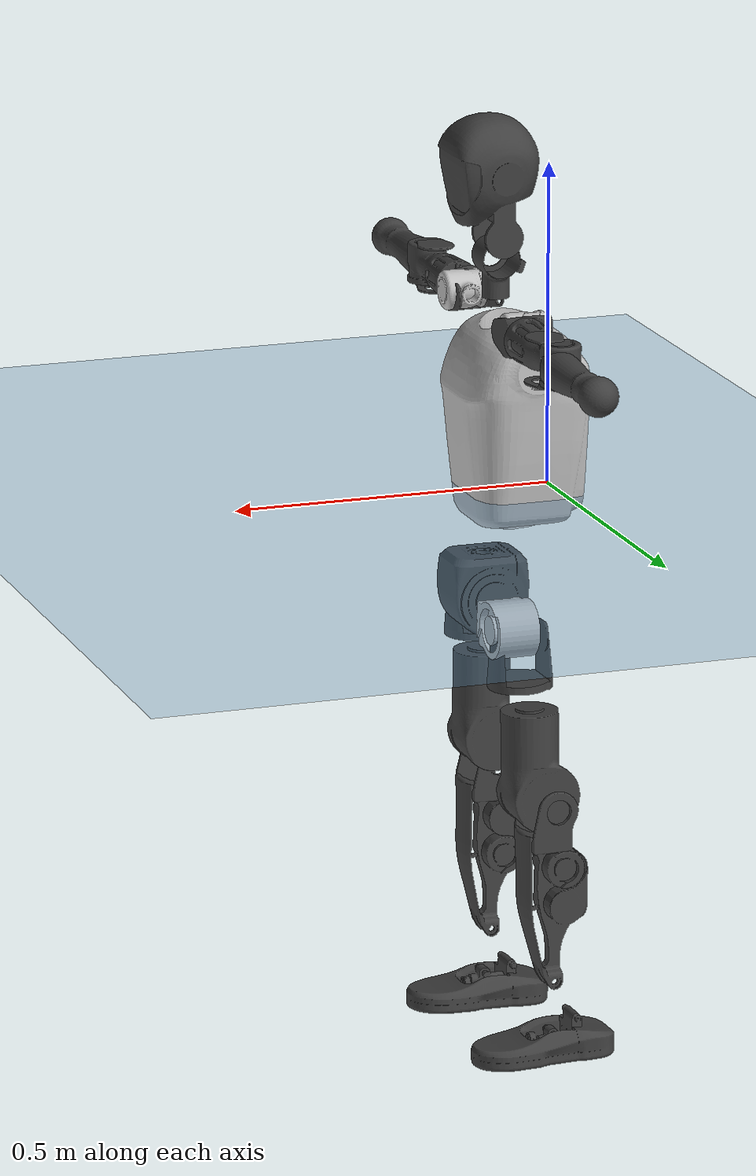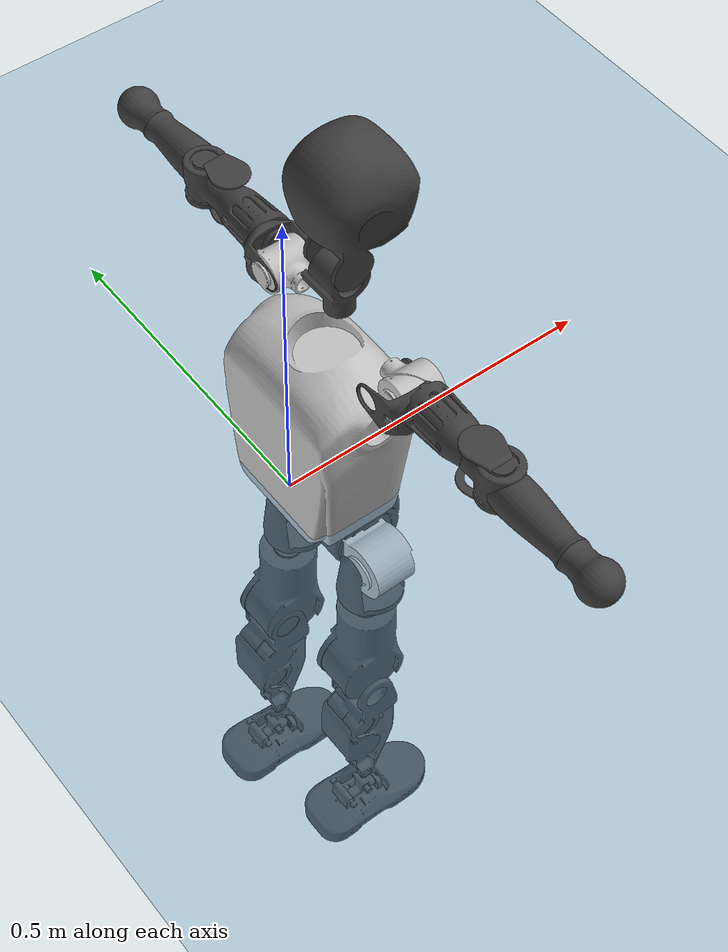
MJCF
<mujoco model="T1">
  <compiler angle="radian" assetdir="assets" balanceinertia="true" inertiafromgeom="false"/>

  <option timestep="0.005" density="1.2" viscosity="2e-05"/>

  <size nkey="1"/>

  <visual>
    <quality shadowsize="8192"/>
    <map shadowclip="0.5"/>
  </visual>

  <default>
    <default class="/">
      <joint armature="0.01" damping="0.01" frictionloss="0.1"/>
      <geom contype="0" conaffinity="0" group="1" solref="-1000 -80"/>
      <site size="0.01 0.005 0.005" group="5"/>
      <general forcelimited="true" biastype="affine" gainprm="25" biasprm="0 -25 -0.6"/>
      <default class="t1">
        <geom rgba="0.25 0.25 0.25 1"/>
        <default class="visual">
          <geom type="mesh" group="2"/>
        </default>
        <default class="collision">
          <geom group="3"/>
        </default>
        <default class="foot">
          <geom size="0.1115 0.05 0.015" type="box" condim="6" group="4" priority="1" solimp="0.015 1 0.015"/>
        </default>
        <default class="reward_collision_sphere">
          <geom group="5" rgba="1 0 0 1"/>
        </default>
      </default>
    </default>
  </default>

  <asset>
    <texture type="skybox" colorspace="auto" name="//unnamed_texture_0" builtin="gradient" rgb1="0.95 0.95 0.95" rgb2="0.95 0.95 0.95" width="100" height="600"/>
    <texture type="2d" colorspace="auto" name="texplane" builtin="checker" rgb1="0.345 0.575 0.748" rgb2="0.345 0.575 0.748" markrgb="1 1 1" width="512" height="512"/>
    <material name="MatPlane" class="/" texture="texplane" texuniform="true" texrepeat="2 2" specular="0.9"/>
    <mesh name="Trunk" class="/" file="Trunk.stl"/>
    <mesh name="H1" class="/" file="H1.stl"/>
    <mesh name="H2" class="/" file="H2.stl"/>
    <mesh name="AL1" class="/" file="AL1.stl"/>
    <mesh name="AL2" class="/" file="AL2.stl"/>
    <mesh name="AL3" class="/" file="AL3.stl"/>
    <mesh name="left_hand_link" class="/" file="left_hand_link.stl"/>
    <mesh name="AR1" class="/" file="AR1.stl"/>
    <mesh name="AR2" class="/" file="AR2.stl"/>
    <mesh name="AR3" class="/" file="AR3.stl"/>
    <mesh name="right_hand_link" class="/" file="right_hand_link.stl"/>
    <mesh name="Waist" class="/" file="Waist.stl"/>
    <mesh name="Hip_Pitch_Left" class="/" file="Hip_Pitch_Left.stl"/>
    <mesh name="Hip_Roll_Left" class="/" file="Hip_Roll_Left.stl"/>
    <mesh name="Hip_Yaw_Left" class="/" file="Hip_Yaw_Left.stl"/>
    <mesh name="Shank_Left" class="/" file="Shank_Left.stl"/>
    <mesh name="Ankle_Cross_Left" class="/" file="Ankle_Cross_Left.stl"/>
    <mesh name="left_foot_link" class="/" file="left_foot_link.stl"/>
    <mesh name="Hip_Pitch_Right" class="/" file="Hip_Pitch_Right.stl"/>
    <mesh name="Hip_Roll_Right" class="/" file="Hip_Roll_Right.stl"/>
    <mesh name="Hip_Yaw_Right" class="/" file="Hip_Yaw_Right.stl"/>
    <mesh name="Shank_Right" class="/" file="Shank_Right.stl"/>
    <mesh name="Ankle_Cross_Right" class="/" file="Ankle_Cross_Right.stl"/>
    <mesh name="right_foot_link" class="/" file="right_foot_link.stl"/>
  </asset>

  <worldbody>
    <geom name="floor" class="/" size="100 100 0.125" type="plane" group="0" material="MatPlane"/>
    <light name="toplight_shadow" class="/" pos="0 0 5" dir="0.0990148 0.0990148 -0.990148" type="directional" ambient="0.04 0.04 0.04" diffuse="0.55 0.55 0.55" specular="0.12 0.12 0.12"/>
    <light name="toplight_fill" class="/" pos="0 0 5" dir="0.0990148 0.0990148 -0.990148" type="directional" castshadow="false" ambient="0.04 0.04 0.04" diffuse="0.3 0.3 0.3" specular="0.08 0.08 0.08"/>
    <body name="trunk" childclass="t1" pos="-0.000880761 -0.00434409 -0.0117479" quat="1 8.15119e-05 0.000171919 0.000115377">
      <inertial pos="0.0827402 0.00986839 0.130122" quat="0.998755 0.0428458 -0.00974344 0.0236087" mass="20.2254" diaginertia="0.615634 0.0235417 0.204287"/>
      <joint name="//unnamed_joint_0" type="free" armature="0" damping="0" frictionloss="0"/>
      <geom name="//unnamed_geom_1" class="visual" rgba="0.76 0.76 0.76 1" mesh="Trunk"/>
      <geom name="//unnamed_geom_2" class="collision" size="0.0874103 0.116547 0.174821" pos="0.0885513 0 0.151233" type="box"/>
      <geom name="//unnamed_geom_3" class="reward_collision_sphere" size="0.134029" pos="0.0885513 0 0.126027"/>
      <geom name="//unnamed_geom_4" class="reward_collision_sphere" size="0.0174821" pos="0.0885513 0.064624 0"/>
      <geom name="//unnamed_geom_5" class="reward_collision_sphere" size="0.0174821" pos="0.0885513 -0.064624 0"/>
      <geom name="//unnamed_geom_6" class="reward_collision_sphere" size="0.0174821" pos="0.0885513 0.0813502 0.226849"/>
      <geom name="//unnamed_geom_7" class="reward_collision_sphere" size="0.0174821" pos="0.0885513 -0.0813502 0.226849"/>
      <site name="imu" pos="0.00130376 -0.0668978 0.0370965" size="0.0116547"/>
      <camera name="track" pos="0 -1.52057 0" quat="0.707107 0.707107 0 0" mode="trackcom"/>
      <camera name="ego_camera" pos="0.180054 0 0.529315" quat="-0.5 -0.5 0.5 0.5"/>
      <body name="H1" pos="0.0880779 0.00895083 0.312347" quat="0.999979 -0.00218022 -0.00559214 0.00258469">
        <inertial pos="-0.00152133 0.00190829 0.064815" quat="0.783474 -0.010674 0.00841769 0.621275" mass="0.883586" diaginertia="0.00201527 5.45412e-05 0.000548389"/>
        <joint name="AAHead_yaw" pos="0 0 0" axis="-0.0104871 0.0306624 0.999475" range="-1.71962 1.26643" armature="0.0125363" damping="0.0652874" frictionloss="0.175584"/>
        <geom name="//unnamed_geom_8" class="visual" mesh="H1"/>
        <body name="H2" pos="-0.00276889 -0.00228844 0.0946071" quat="0.999967 0.00332519 0.00487572 -0.00561394">
          <inertial pos="0.0190746 -0.0098334 0.112621" quat="0.994698 0.0739351 -0.0555232 -0.0450087" mass="0.972975" diaginertia="0.0137559 0.000452637 0.00562531"/>
          <joint name="Head_pitch" pos="0 0 0" axis="0.0445433 -0.998335 0.0366599" stiffness="0.0503795" range="-1.31928 0.338121" armature="0.01115" damping="0.000984597" frictionloss="0.110285"/>
          <geom name="//unnamed_geom_9" class="visual" mesh="H2"/>
          <geom name="//unnamed_geom_10" class="collision" size="0.0932377" pos="0.0147586 0 0.13863"/>
          <geom name="//unnamed_geom_11" class="reward_collision_sphere" size="0.104892" pos="0.0295171 0 0.126027"/>
        </body>
      </body>
      <body name="AL1" pos="0.0882725 0.0850655 0.286511" quat="1 -0.000160823 -0.0002919 3.78613e-05">
        <inertial pos="-0.00723484 0.0436031 -0.00101005" quat="0.485387 0.486434 -0.470718 0.553359" mass="0.932017" diaginertia="0.0120729 0.000371416 0.00108642"/>
        <joint name="Left_Shoulder_Pitch" pos="0 0 0" axis="-0.00669314 0.998948 -0.0453611" stiffness="0.0456016" range="-3.60086 1.22952" armature="0.0184861" damping="0.054428" frictionloss="0.163531"/>
        <geom name="//unnamed_geom_12" class="visual" rgba="0.76 0.76 0.76 1" mesh="AL1"/>
        <body name="AL2" pos="0.00328519 0.0379682 0.000472059" quat="0.999976 -0.00412124 -0.00231988 0.0051515">
          <inertial pos="-0.00990434 0.0197711 -0.000136553" quat="0.486337 0.508389 -0.522156 0.482048" mass="0.301627" diaginertia="0.0033223 0.000105984 0.000624135"/>
          <joint name="Left_Shoulder_Roll" pos="0 0 0" axis="-0.999998 0.00165754 -0.000940954" stiffness="0.0213203" range="-1.59505 1.83242" armature="0.00554452" damping="0" frictionloss="0.135423"/>
          <geom name="//unnamed_geom_13" class="visual" mesh="AL2"/>
          <body name="AL3" pos="0.0108778 0.05354 0.000385047" quat="0.999977 -0.00601413 0.00289483 0.000935381">
            <inertial pos="-0.0145713 0.0605116 -0.00867699" quat="0.678955 0.730659 0.00277102 0.071762" mass="1.3036" diaginertia="0.0774203 0.00206883 0.00154198"/>
            <joint name="Left_Elbow_Pitch" pos="0 0 0" axis="0.0277002 -0.999613 0.00264621" range="-2.23431 1.96035" armature="0.00478244" damping="0" frictionloss="0.0264114"/>
            <geom name="//unnamed_geom_14" class="visual" mesh="AL3"/>
            <geom name="//unnamed_geom_15" class="collision" size="0.0349641 0.0874103" pos="0 0.0380141 0" quat="0.707105 0.707108 0 0" type="cylinder"/>
            <geom name="//unnamed_geom_16" class="reward_collision_sphere" size="0.0419569"/>
            <body name="left_hand_link" pos="0.010204 0.104337 -0.00302711" quat="0.999971 0.00191241 -0.0045343 0.00579264">
              <inertial pos="0.00445319 0.0721004 -0.00148244" quat="0.698746 0.715027 -0.00954335 0.0199985" mass="0.576621" diaginertia="0.0467158 0.00176271 0.00079903"/>
              <joint name="Left_Elbow_Yaw" pos="0 0 0" axis="-0.047068 -0.0440483 0.99792" range="-2.26664 -0.307784" armature="0.0183565" damping="0.0745742" frictionloss="0.0650577"/>
              <geom name="//unnamed_geom_17" class="visual" mesh="left_hand_link"/>
              <geom name="//unnamed_geom_18" class="collision" size="0.0349641 0.101979" pos="0 0.0988367 0" quat="0.707105 0.707108 0 0" type="cylinder"/>
              <geom name="//unnamed_geom_19" class="reward_collision_sphere" size="0.0582735"/>
              <geom name="//unnamed_geom_20" class="reward_collision_sphere" size="0.0407915" pos="0 0.0836311 0"/>
              <geom name="//unnamed_geom_21" class="reward_collision_sphere" size="0.0407915" pos="0 0.163461 0"/>
            </body>
          </body>
        </body>
      </body>
      <body name="AR1" pos="0.0887793 -0.0926767 0.290175" quat="0.999999 0.000334621 0.00149758 0.000322853">
        <inertial pos="-0.000273055 -0.0211274 -0.000894782" quat="0.482965 0.493388 -0.508087 0.514938" mass="0.744894" diaginertia="0.0097438 0.000365245 0.000948775"/>
        <joint name="Right_Shoulder_Pitch" pos="0 0 0" axis="-0.0503137 -0.996865 -0.0610608" stiffness="0.0414934" range="-1.22806 3.02101" armature="0.0140566" damping="0" frictionloss="0.203102"/>
        <geom name="//unnamed_geom_22" class="visual" rgba="0.76 0.76 0.76 1" mesh="AR1"/>
        <body name="AR2" pos="-0.0161321 -0.0214735 -0.00547127" quat="1 -7.53441e-05 -0.00014651 0.00017329">
          <inertial pos="-0.00586923 -0.0291779 -0.00216733" quat="0.484517 0.50069 -0.514489 0.499854" mass="0.170007" diaginertia="0.00230294 7.98648e-05 0.000471811"/>
          <joint name="Right_Shoulder_Roll" pos="0 0 0" axis="-0.997984 0.00608017 -0.0631727" stiffness="0.0614025" range="-1.73574 1.34093" armature="0.0139992" damping="0.0727763" frictionloss="0.0439339"/>
          <geom name="//unnamed_geom_23" class="visual" mesh="AR2"/>
          <body name="AR3" pos="0.0130293 -0.0507389 0.00825033" quat="0.99999 -0.000346581 -0.00385376 -0.00233166">
            <inertial pos="-0.000153685 -0.0769013 -0.000276412" quat="0.716457 0.696632 -0.018483 0.0324165" mass="1.08545" diaginertia="0.0712717 0.00255331 0.00155842"/>
            <joint name="Right_Elbow_Pitch" pos="0 0 0" axis="-0.000829056 0.999918 0.0128104" stiffness="0.0831634" range="-2.03054 2.5288" armature="0.0132054" damping="0.0252246" frictionloss="0.114796"/>
            <geom name="//unnamed_geom_24" class="visual" mesh="AR3"/>
            <geom name="//unnamed_geom_25" class="collision" size="0.0349641 0.0874103" pos="0 -0.0380141 0" quat="0.707105 0.707108 0 0" type="cylinder"/>
            <geom name="//unnamed_geom_26" class="reward_collision_sphere" size="0.0419569"/>
            <body name="right_hand_link" pos="-0.00160323 -0.111423 -0.00140301" quat="1 -1.90599e-05 1.08314e-05 -0.000690655">
              <inertial pos="0.00303137 -0.0840862 0.015649" quat="0.726869 0.685521 -0.0173867 -0.0376755" mass="0.697622" diaginertia="0.061739 0.00243866 0.000763051"/>
              <joint name="Right_Elbow_Yaw" pos="0 0 0" axis="-0.0540525 -0.00985121 0.998489" range="-0.143569 2.17616" armature="0.0142543" damping="0.00990067" frictionloss="0.131878"/>
              <geom name="//unnamed_geom_27" class="visual" mesh="right_hand_link"/>
              <geom name="//unnamed_geom_28" class="collision" size="0.0349641 0.101979" pos="0 -0.0988367 0" quat="0.707105 0.707108 0 0" type="cylinder"/>
              <geom name="//unnamed_geom_29" class="reward_collision_sphere" size="0.0582735"/>
              <geom name="//unnamed_geom_30" class="reward_collision_sphere" size="0.0407915" pos="0 -0.0836311 0"/>
              <geom name="//unnamed_geom_31" class="reward_collision_sphere" size="0.0407915" pos="0 -0.163461 0"/>
            </body>
          </body>
        </body>
      </body>
      <body name="Waist" pos="0.109056 0.0129954 -0.150443" quat="0.999982 0.00222737 -0.00274283 0.00484878">
        <inertial pos="0.000898389 0.0119317 0.0055098" quat="0.983451 -0.00122156 -0.181163 0.00174076" mass="4.20092" diaginertia="0.0470763 0.00162634 0.0197355"/>
        <joint name="Waist" pos="0 0 0" axis="0.0281062 -0.041573 0.99874" range="-1.5538 1.59914" armature="0.00777457" damping="0.0400526" frictionloss="0.201864"/>
        <geom name="//unnamed_geom_32" class="visual" mesh="Waist"/>
        <body name="Hip_Pitch_Left" pos="-0.00732676 0.0949435 -0.0121217" quat="0.99998 -0.00270332 0.000812086 0.00558558">
          <inertial pos="-0.000260464 -0.000334685 -0.023929" quat="0.979884 0.193725 0.0478794 0.00222065" mass="1.60807" diaginertia="0.0147975 0.000330602 0.00485947"/>
          <joint name="Left_Hip_Pitch" pos="0 0 0" axis="0.0225715 0.999716 0.00759615" stiffness="0.0711579" range="-1.73138 1.44779" armature="0.0147479" damping="0" frictionloss="0.0745644"/>
          <geom name="//unnamed_geom_33" class="visual" rgba="0.76 0.76 0.76 1" mesh="Hip_Pitch_Left"/>
          <body name="Hip_Roll_Left" pos="-0.0136061 0.00334183 -0.0346793" quat="0.999967 -0.00125947 0.00784825 0.00175595">
            <inertial pos="0.0159045 0.0124575 -0.0733787" quat="0.672515 -0.0438898 -0.0583308 0.736474" mass="0.561789" diaginertia="0.0133892 0.000346979 0.00166883"/>
            <joint name="Left_Hip_Roll" pos="0 0 0" axis="-0.996738 -0.0804196 -0.0067905" stiffness="0.00635049" range="-1.33936 -0.0811761" armature="0.00427568" damping="0" frictionloss="0.130914"/>
            <geom name="//unnamed_geom_34" class="visual" mesh="Hip_Roll_Left"/>
            <geom name="//unnamed_geom_35" class="reward_collision_sphere" size="0.0641009"/>
            <body name="Hip_Yaw_Left" pos="-0.0167034 0.00285949 -0.11608" quat="0.999973 0.00612826 -0.00137331 -0.00373612">
              <inertial pos="-0.0147676 0.00297748 -0.103675" quat="0.709708 -0.0382662 -0.0373726 0.702463" mass="3.74411" diaginertia="0.217944 0.00680969 0.00748026"/>
              <joint name="Left_Hip_Yaw" pos="0 0 0" axis="-0.0396534 -0.0158996 -0.999087" stiffness="0.00335552" range="-1.10875 1.30158" armature="0.00978498" damping="0.0277277" frictionloss="0.0676525"/>
              <geom name="//unnamed_geom_36" class="visual" mesh="Hip_Yaw_Left"/>
              <geom name="//unnamed_geom_37" class="collision" size="0.0582735 0.0932377" type="cylinder"/>
              <body name="Shank_Left" pos="-0.0283425 0.00635464 -0.153551" quat="1 2.92239e-05 0.000749809 0.000131274">
                <inertial pos="-0.0214031 0.0134487 -0.159543" quat="0.998137 0.0206242 -0.0202749 0.0537228" mass="2.83178" diaginertia="0.245437 0.00930369 0.00521941"/>
                <joint name="Left_Knee_Pitch" pos="0 0 0" axis="0.0151179 0.999744 -0.0168403" range="-0.18687 2.18496" armature="0.0115138" damping="0" frictionloss="0.0990074"/>
                <geom name="//unnamed_geom_38" class="visual" mesh="Shank_Left"/>
                <geom name="//unnamed_geom_39" class="collision" size="0.0582735 0.0874103" pos="0 0 -0.151233" type="cylinder"/>
                <geom name="//unnamed_geom_40" class="reward_collision_sphere" size="0.0757556"/>
                <body name="Ankle_Cross_Left" pos="0.000889663 0.00178714 -0.36762" quat="0.99999 0.000549884 0.0044884 -0.000623633">
                  <inertial pos="-0.0167752 -0.00641177 -0.00110957" quat="0.446179 0.549732 0.551824 0.440691" mass="0.103479" diaginertia="0.000197189 7.73732e-06 3.88921e-05"/>
                  <joint name="Left_Ankle_Pitch" pos="0 0 0" axis="0.0322134 0.999163 -0.0251973" range="-0.747735 0.221382" armature="0.0100135" damping="0" frictionloss="0.181519"/>
                  <geom name="//unnamed_geom_41" class="visual" mesh="Ankle_Cross_Left"/>
                  <body name="left_foot_link" pos="0.00280075 -0.00897196 -0.010551" quat="0.999997 0.00194277 0.000193085 -0.00163781">
                    <inertial pos="-0.00714981 -0.0123077 -0.0105462" quat="0.0393086 0.642521 0.0153038 0.765106" mass="1.18457" diaginertia="0.0139222 0.000497202 0.00577637"/>
                    <joint name="Left_Ankle_Roll" pos="0 0 0" axis="-0.998782 -0.0199129 -0.0451348" range="-0.310754 0.147291" armature="0.00324303" damping="0" frictionloss="0.0771854"/>
                    <geom name="//unnamed_geom_42" class="visual" mesh="left_foot_link"/>
                    <geom name="left_foot" class="foot" size="0.0964896 0.0649801 0.0211032" pos="0.0147586 0 -0.0189041"/>
                    <geom name="//unnamed_geom_44" class="reward_collision_sphere" size="0.0606045" pos="0.0147586 0 -0.0189041"/>
                    <geom name="//unnamed_geom_45" class="reward_collision_sphere" size="0.0349641" pos="0.140206 -0.0174865 -0.0189041"/>
                    <geom name="//unnamed_geom_46" class="reward_collision_sphere" size="0.0349641" pos="-0.10331 -0.0174865 -0.0189041"/>
                    <site name="left_foot" class="foot" pos="0.0147586 0 -0.0189041" size="0.0116547"/>
                  </body>
                </body>
              </body>
            </body>
          </body>
        </body>
        <body name="Hip_Pitch_Right" pos="-0.0128297 -0.0866358 0.0117246" quat="1 0.000500396 -0.000403882 0.000710949">
          <inertial pos="0.0143078 0.00120285 -0.0233262" quat="0.970257 -0.235075 0.0552702 0.016914" mass="1.95223" diaginertia="0.0140221 0.000408207 0.0043636"/>
          <joint name="Right_Hip_Pitch" pos="0 0 0" axis="0.0274057 -0.99956 -0.0113796" stiffness="0.0419704" range="-1.66663 1.98805" armature="0.00249356" damping="0.0102664" frictionloss="0.166263"/>
          <geom name="//unnamed_geom_47" class="visual" rgba="0.76 0.76 0.76 1" mesh="Hip_Pitch_Right"/>
          <body name="Hip_Roll_Right" pos="-0.00387694 0.00913834 -0.0216961" quat="0.999999 0.00142012 6.64987e-05 -0.000303697">
            <inertial pos="9.05303e-05 0.0147145 -0.0561817" quat="0.694908 0.0564981 -0.0309616 0.716207" mass="0.696823" diaginertia="0.0141 0.000457046 0.0019855"/>
            <joint name="Right_Hip_Roll" pos="0 0 0" axis="-0.999853 0.00279468 -0.0169312" stiffness="0.0289575" range="-0.148175 1.54551" armature="0.0120975" damping="0" frictionloss="0.185936"/>
            <geom name="//unnamed_geom_48" class="visual" mesh="Hip_Roll_Right"/>
            <geom name="//unnamed_geom_49" class="reward_collision_sphere" size="0.0641009"/>
            <body name="Hip_Yaw_Right" pos="-0.0126309 -0.00466036 -0.105317" quat="0.999984 -0.00131819 -0.00541937 0.000981723">
              <inertial pos="-0.011407 0.0160584 -0.120536" quat="0.691069 -0.0388073 -0.0253094 0.721302" mass="3.65327" diaginertia="0.217256 0.00773681 0.0106437"/>
              <joint name="Right_Hip_Yaw" pos="0 0 0" axis="-0.0365075 0.0308676 -0.998857" stiffness="0.000384418" range="-0.819485 0.74893" armature="0.014187" damping="0" frictionloss="0.119735"/>
              <geom name="//unnamed_geom_50" class="visual" mesh="Hip_Yaw_Right"/>
              <geom name="//unnamed_geom_51" class="collision" size="0.0582735 0.0932377" type="cylinder"/>
              <body name="Shank_Right" pos="-0.0207552 -0.00924907 -0.173988" quat="1 0.000902443 -0.000167235 6.21997e-05">
                <inertial pos="-0.00946234 -0.00068433 -0.146706" quat="0.998578 -0.0135763 -0.0171826 -0.0485985" mass="3.30753" diaginertia="0.343794 0.0111406 0.00720067"/>
                <joint name="Right_Knee_Pitch" pos="0 0 0" axis="0.00675757 -0.999964 0.00509814" stiffness="0.0654034" range="-2.51553 -0.153111" armature="0.011781" damping="0" frictionloss="0.10999"/>
                <geom name="//unnamed_geom_52" class="visual" mesh="Shank_Right"/>
                <geom name="//unnamed_geom_53" class="collision" size="0.0582735 0.0874103" pos="0 0 -0.151233" type="cylinder"/>
                <geom name="//unnamed_geom_54" class="reward_collision_sphere" size="0.0757556"/>
                <body name="Ankle_Cross_Right" pos="0.00696732 0.000482492 -0.355114" quat="0.99998 0.0047601 -0.00289455 -0.00286853">
                  <inertial pos="-0.000313871 -0.000436833 0.00448239" quat="0.375497 0.563358 0.575961 0.458147" mass="0.136565" diaginertia="0.000285107 6.47615e-06 5.01134e-05"/>
                  <joint name="Right_Ankle_Pitch" pos="0 0 0" axis="-0.0424985 -0.998055 -0.0456146" stiffness="0.0629041" range="-0.570764 0.728984" armature="0.0123626" damping="0.0640954" frictionloss="0.18805"/>
                  <geom name="//unnamed_geom_55" class="visual" mesh="Ankle_Cross_Right"/>
                  <body name="right_foot_link" pos="0.000717487 -0.00159255 -0.0183628" quat="0.999993 0.00302209 -0.00146842 0.00138759">
                    <inertial pos="0.015912 0.0110561 -0.0106178" quat="-0.0101624 0.645366 0.0435886 0.762561" mass="1.06554" diaginertia="0.0202678 0.000649233 0.00843601"/>
                    <joint name="Right_Ankle_Roll" pos="0 0 0" axis="-0.999972 0.000887668 -0.00743407" range="-0.346535 0.394718" armature="0.00665315" damping="0" frictionloss="0.109313"/>
                    <geom name="//unnamed_geom_56" class="visual" mesh="right_foot_link"/>
                    <geom name="right_foot" class="foot" size="0.0923658 0.0390228 0.0171677" pos="0.0147586 0 -0.0189041"/>
                    <geom name="//unnamed_geom_58" class="reward_collision_sphere" size="0.0466188"/>
                    <geom name="//unnamed_geom_59" class="reward_collision_sphere" size="0.0349641" pos="0.0147586 0 -0.0189041"/>
                    <geom name="//unnamed_geom_60" class="reward_collision_sphere" size="0.0349641" pos="0.140206 0.0174865 -0.0189041"/>
                    <geom name="//unnamed_geom_61" class="reward_collision_sphere" size="0.0349641" pos="-0.10331 0.0174865 -0.0189041"/>
                    <site name="right_foot" class="foot" pos="0.0147586 0 -0.0189041" size="0.0116547"/>
                  </body>
                </body>
              </body>
            </body>
          </body>
        </body>
      </body>
    </body>
  </worldbody>

  <contact>
    <pair class="/" geom1="floor" geom2="left_foot" name="//unnamed_contact_0"/>
    <pair class="/" geom1="floor" geom2="right_foot" name="//unnamed_contact_1"/>
  </contact>

  <actuator>
    <general name="AAHead_yaw" class="/" joint="AAHead_yaw" forcerange="-4.85166 4.85166" gainprm="26.7835" biasprm="0 -26.7835 -0.872031"/>
    <general name="Head_pitch" class="/" joint="Head_pitch" forcerange="-4.69546 4.69546" gainprm="26.7835" biasprm="0 -26.7835 -0.872031"/>
    <general name="Left_Shoulder_Pitch" class="/" joint="Left_Shoulder_Pitch" forcerange="-26.7063 26.7063" gainprm="26.7835" biasprm="0 -26.7835 -0.872031"/>
    <general name="Left_Shoulder_Roll" class="/" joint="Left_Shoulder_Roll" forcerange="-17.9761 17.9761" gainprm="26.7835" biasprm="0 -26.7835 -0.872031"/>
    <general name="Left_Elbow_Pitch" class="/" joint="Left_Elbow_Pitch" forcerange="-9.83227 9.83227" gainprm="26.7835" biasprm="0 -26.7835 -0.872031"/>
    <general name="Left_Elbow_Yaw" class="/" joint="Left_Elbow_Yaw" forcerange="-29.2419 29.2419" gainprm="26.7835" biasprm="0 -26.7835 -0.872031"/>
    <general name="Right_Shoulder_Pitch" class="/" joint="Right_Shoulder_Pitch" forcerange="-32.9561 32.9561" gainprm="26.7835" biasprm="0 -26.7835 -0.872031"/>
    <general name="Right_Shoulder_Roll" class="/" joint="Right_Shoulder_Roll" forcerange="-21.6374 21.6374" gainprm="26.7835" biasprm="0 -26.7835 -0.872031"/>
    <general name="Right_Elbow_Pitch" class="/" joint="Right_Elbow_Pitch" forcerange="-9.57434 9.57434" gainprm="26.7835" biasprm="0 -26.7835 -0.872031"/>
    <general name="Right_Elbow_Yaw" class="/" joint="Right_Elbow_Yaw" forcerange="-15.1077 15.1077" gainprm="26.7835" biasprm="0 -26.7835 -0.872031"/>
    <general name="Waist" class="/" joint="Waist" forcerange="-41.5835 41.5835" gainprm="26.7835" biasprm="0 -26.7835 -0.872031"/>
    <general name="Left_Hip_Pitch" class="/" joint="Left_Hip_Pitch" forcerange="-65.7966 65.7966" gainprm="26.7835" biasprm="0 -26.7835 -0.872031"/>
    <general name="Left_Hip_Roll" class="/" joint="Left_Hip_Roll" forcerange="-16.9736 16.9736" gainprm="26.7835" biasprm="0 -26.7835 -0.872031"/>
    <general name="Left_Hip_Yaw" class="/" joint="Left_Hip_Yaw" forcerange="-55.7838 55.7838" gainprm="26.7835" biasprm="0 -26.7835 -0.872031"/>
    <general name="Left_Knee_Pitch" class="/" joint="Left_Knee_Pitch" forcerange="-38.6363 38.6363" gainprm="26.7835" biasprm="0 -26.7835 -0.872031"/>
    <general name="Left_Ankle_Pitch" class="/" joint="Left_Ankle_Pitch" forcerange="-38.0916 38.0916" gainprm="26.7835" biasprm="0 -26.7835 -0.872031"/>
    <general name="Left_Ankle_Roll" class="/" joint="Left_Ankle_Roll" forcerange="-18.8446 18.8446" gainprm="26.7835" biasprm="0 -26.7835 -0.872031"/>
    <general name="Right_Hip_Pitch" class="/" joint="Right_Hip_Pitch" forcerange="-54.9387 54.9387" gainprm="26.7835" biasprm="0 -26.7835 -0.872031"/>
    <general name="Right_Hip_Roll" class="/" joint="Right_Hip_Roll" forcerange="-47.223 47.223" gainprm="26.7835" biasprm="0 -26.7835 -0.872031"/>
    <general name="Right_Hip_Yaw" class="/" joint="Right_Hip_Yaw" forcerange="-47.1805 47.1805" gainprm="26.7835" biasprm="0 -26.7835 -0.872031"/>
    <general name="Right_Knee_Pitch" class="/" joint="Right_Knee_Pitch" forcerange="-35.9998 35.9998" gainprm="26.7835" biasprm="0 -26.7835 -0.872031"/>
    <general name="Right_Ankle_Pitch" class="/" joint="Right_Ankle_Pitch" forcerange="-14.7713 14.7713" gainprm="26.7835" biasprm="0 -26.7835 -0.872031"/>
    <general name="Right_Ankle_Roll" class="/" joint="Right_Ankle_Roll" forcerange="-27.0353 27.0353" gainprm="26.7835" biasprm="0 -26.7835 -0.872031"/>
  </actuator>

  <sensor>
    <gyro site="imu" name="imu_angular_velocity"/>
    <velocimeter site="imu" name="imu_linear_velocity"/>
    <framelinvel objtype="site" objname="left_foot" name="left_foot_global_linear_velocity"/>
    <framelinvel objtype="site" objname="right_foot" name="right_foot_global_linear_velocity"/>
  </sensor>

  <keyframe>
    <key name="home" qpos="0 0 0.6385 1 0 0 0 0 0 0 1.4 0 -0.4 0 -1.4 0 0.4 0 -0.4 0 0 0.8 -0.4 0 0.4 0 0 -0.8 0.4 0"/>
  </keyframe>
</mujoco>
